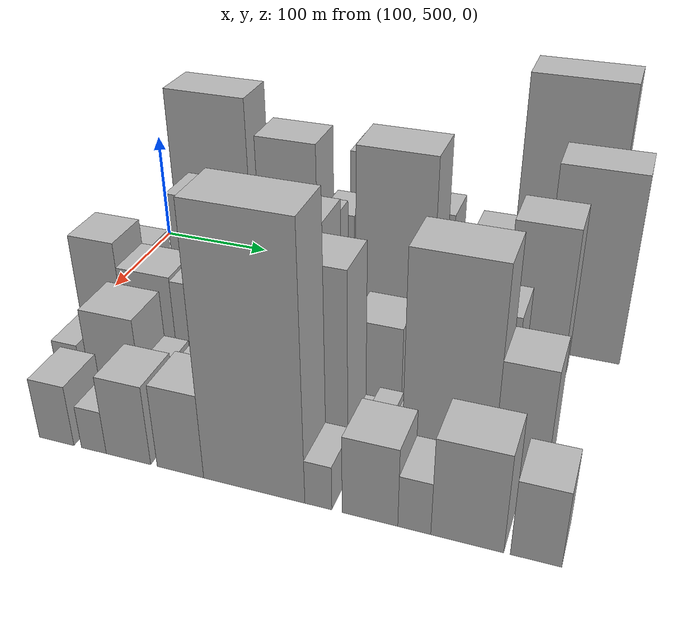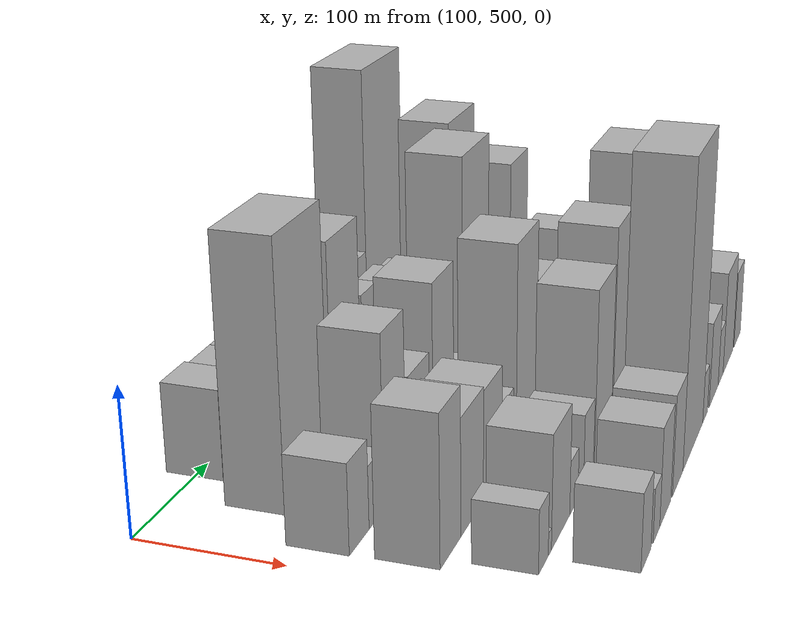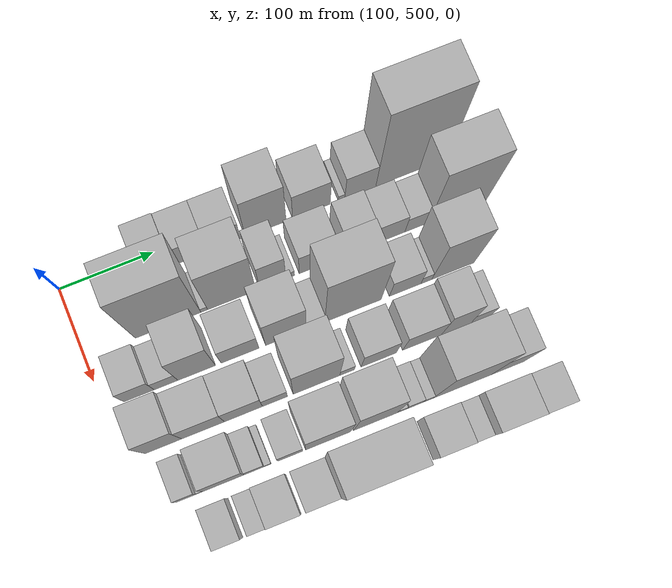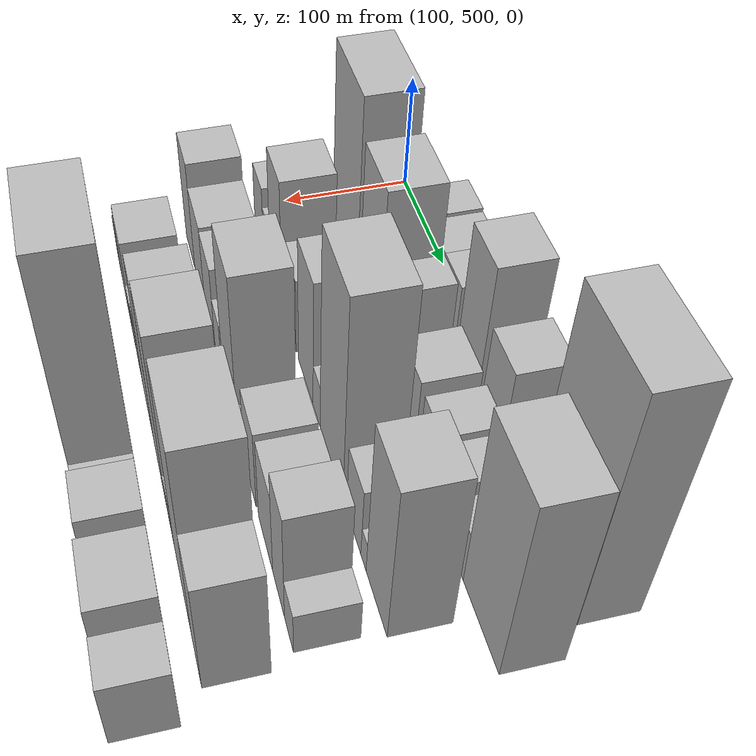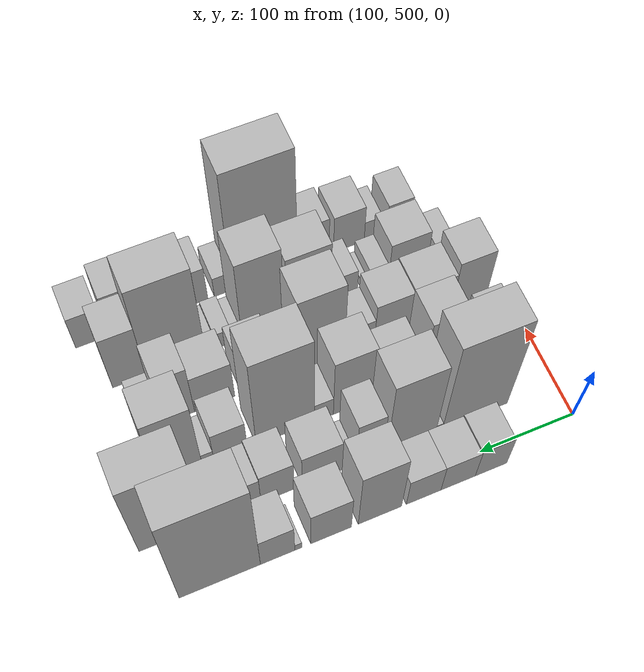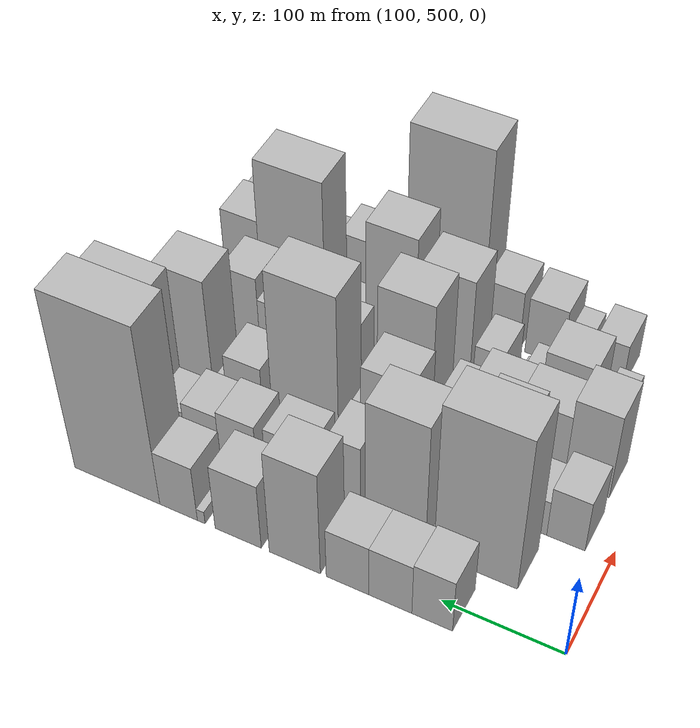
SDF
<sdf version="1.6">
 <world name="default">
  <model name="building_44">
   <static>1</static>
   <pose>100.0000 598.2994 0 0.000000 0.000000 0.000000</pose>
   <link name="link">
    <pose>0 0 31.50 0 0 0</pose>
    <collision name="collision"><geometry><box><size>40.0000 33.3076 63.0000</size></box></geometry></collision>
    <visual name="visual">
     <cast_shadows>0</cast_shadows>
     <geometry><box><size>40.0000 33.3076 63.0000</size></box></geometry>
     <material>
      <script>
       <uri>model://HANNAS_wall/materials/scripts</uri>
       <uri>model://HANNAS_wall/materials/textures</uri>
       <name>vrc/HANNAS_wall</name>
      </script>
     </material>
    </visual>
   </link>
  </model>
  <model name="building_45">
   <static>1</static>
   <pose>100.0000 632.9223 0 0.000000 0.000000 0.000000</pose>
   <link name="link">
    <pose>0 0 30.00 0 0 0</pose>
    <collision name="collision"><geometry><box><size>40.0000 35.9383 60.0000</size></box></geometry></collision>
    <visual name="visual">
     <cast_shadows>0</cast_shadows>
     <geometry><box><size>40.0000 35.9383 60.0000</size></box></geometry>
     <material>
      <script>
       <uri>model://HANNAS_wall/materials/scripts</uri>
       <uri>model://HANNAS_wall/materials/textures</uri>
       <name>vrc/HANNAS_wall</name>
      </script>
     </material>
    </visual>
   </link>
  </model>
  <model name="building_46">
   <static>1</static>
   <pose>100.0000 668.8182 0 0.000000 0.000000 0.000000</pose>
   <link name="link">
    <pose>0 0 30.00 0 0 0</pose>
    <collision name="collision"><geometry><box><size>40.0000 35.8536 60.0000</size></box></geometry></collision>
    <visual name="visual">
     <cast_shadows>0</cast_shadows>
     <geometry><box><size>40.0000 35.8536 60.0000</size></box></geometry>
     <material>
      <script>
       <uri>model://HANNAS_wall/materials/scripts</uri>
       <uri>model://HANNAS_wall/materials/textures</uri>
       <name>vrc/HANNAS_wall</name>
      </script>
     </material>
    </visual>
   </link>
  </model>
  <model name="building_47">
   <static>1</static>
   <pose>100.0000 713.8570 0 0.000000 0.000000 0.000000</pose>
   <link name="link">
    <pose>0 0 61.50 0 0 0</pose>
    <collision name="collision"><geometry><box><size>40.0000 44.2238 123.0000</size></box></geometry></collision>
    <visual name="visual">
     <cast_shadows>0</cast_shadows>
     <geometry><box><size>40.0000 44.2238 123.0000</size></box></geometry>
     <material>
      <script>
       <uri>model://HANNAS_wall/materials/scripts</uri>
       <uri>model://HANNAS_wall/materials/textures</uri>
       <name>vrc/HANNAS_wall</name>
      </script>
     </material>
    </visual>
   </link>
  </model>
  <model name="building_48">
   <static>1</static>
   <pose>100.0000 763.4033 0 0.000000 0.000000 0.000000</pose>
   <link name="link">
    <pose>0 0 39.00 0 0 0</pose>
    <collision name="collision"><geometry><box><size>40.0000 40.8688 78.0000</size></box></geometry></collision>
    <visual name="visual">
     <cast_shadows>0</cast_shadows>
     <geometry><box><size>40.0000 40.8688 78.0000</size></box></geometry>
     <material>
      <script>
       <uri>model://HANNAS_wall/materials/scripts</uri>
       <uri>model://HANNAS_wall/materials/textures</uri>
       <name>vrc/HANNAS_wall</name>
      </script>
     </material>
    </visual>
   </link>
  </model>
  <model name="building_49">
   <static>1</static>
   <pose>100.0000 796.3240 0 0.000000 0.000000 0.000000</pose>
   <link name="link">
    <pose>0 0 7.50 0 0 0</pose>
    <collision name="collision"><geometry><box><size>40.0000 6.9727 15.0000</size></box></geometry></collision>
    <visual name="visual">
     <cast_shadows>0</cast_shadows>
     <geometry><box><size>40.0000 6.9727 15.0000</size></box></geometry>
     <material>
      <script>
       <uri>model://HANNAS_wall/materials/scripts</uri>
       <uri>model://HANNAS_wall/materials/textures</uri>
       <name>vrc/HANNAS_wall</name>
      </script>
     </material>
    </visual>
   </link>
  </model>
  <model name="building_50">
   <static>1</static>
   <pose>100.0000 816.8563 0 0.000000 0.000000 0.000000</pose>
   <link name="link">
    <pose>0 0 33.00 0 0 0</pose>
    <collision name="collision"><geometry><box><size>40.0000 34.0918 66.0000</size></box></geometry></collision>
    <visual name="visual">
     <cast_shadows>0</cast_shadows>
     <geometry><box><size>40.0000 34.0918 66.0000</size></box></geometry>
     <material>
      <script>
       <uri>model://HANNAS_wall/materials/scripts</uri>
       <uri>model://HANNAS_wall/materials/textures</uri>
       <name>vrc/HANNAS_wall</name>
      </script>
     </material>
    </visual>
   </link>
  </model>
  <model name="building_51">
   <static>1</static>
   <pose>100.0000 873.5854 0 0.000000 0.000000 0.000000</pose>
   <link name="link">
    <pose>0 0 103.50 0 0 0</pose>
    <collision name="collision"><geometry><box><size>40.0000 79.3665 207.0000</size></box></geometry></collision>
    <visual name="visual">
     <cast_shadows>0</cast_shadows>
     <geometry><box><size>40.0000 79.3665 207.0000</size></box></geometry>
     <material>
      <script>
       <uri>model://HANNAS_wall/materials/scripts</uri>
       <uri>model://HANNAS_wall/materials/textures</uri>
       <name>vrc/HANNAS_wall</name>
      </script>
     </material>
    </visual>
   </link>
  </model>
  <model name="building_98">
   <static>1</static>
   <pose>155.0000 588.2048 0 0.000000 0.000000 0.000000</pose>
   <link name="link">
    <pose>0 0 90.00 0 0 0</pose>
    <collision name="collision"><geometry><box><size>40.0000 69.4981 180.0000</size></box></geometry></collision>
    <visual name="visual">
     <cast_shadows>0</cast_shadows>
     <geometry><box><size>40.0000 69.4981 180.0000</size></box></geometry>
     <material>
      <script>
       <uri>model://HANNAS_wall/materials/scripts</uri>
       <uri>model://HANNAS_wall/materials/textures</uri>
       <name>vrc/HANNAS_wall</name>
      </script>
     </material>
    </visual>
   </link>
  </model>
  <model name="building_99">
   <static>1</static>
   <pose>155.0000 626.5438 0 0.000000 0.000000 0.000000</pose>
   <link name="link">
    <pose>0 0 7.50 0 0 0</pose>
    <collision name="collision"><geometry><box><size>40.0000 7.1798 15.0000</size></box></geometry></collision>
    <visual name="visual">
     <cast_shadows>0</cast_shadows>
     <geometry><box><size>40.0000 7.1798 15.0000</size></box></geometry>
     <material>
      <script>
       <uri>model://HANNAS_wall/materials/scripts</uri>
       <uri>model://HANNAS_wall/materials/textures</uri>
       <name>vrc/HANNAS_wall</name>
      </script>
     </material>
    </visual>
   </link>
  </model>
  <model name="building_100">
   <static>1</static>
   <pose>155.0000 655.9914 0 0.000000 0.000000 0.000000</pose>
   <link name="link">
    <pose>0 0 75.00 0 0 0</pose>
    <collision name="collision"><geometry><box><size>40.0000 51.7154 150.0000</size></box></geometry></collision>
    <visual name="visual">
     <cast_shadows>0</cast_shadows>
     <geometry><box><size>40.0000 51.7154 150.0000</size></box></geometry>
     <material>
      <script>
       <uri>model://HANNAS_wall/materials/scripts</uri>
       <uri>model://HANNAS_wall/materials/textures</uri>
       <name>vrc/HANNAS_wall</name>
      </script>
     </material>
    </visual>
   </link>
  </model>
  <model name="building_101">
   <static>1</static>
   <pose>155.0000 699.9116 0 0.000000 0.000000 0.000000</pose>
   <link name="link">
    <pose>0 0 46.50 0 0 0</pose>
    <collision name="collision"><geometry><box><size>40.0000 28.1250 93.0000</size></box></geometry></collision>
    <visual name="visual">
     <cast_shadows>0</cast_shadows>
     <geometry><box><size>40.0000 28.1250 93.0000</size></box></geometry>
     <material>
      <script>
       <uri>model://HANNAS_wall/materials/scripts</uri>
       <uri>model://HANNAS_wall/materials/textures</uri>
       <name>vrc/HANNAS_wall</name>
      </script>
     </material>
    </visual>
   </link>
  </model>
  <model name="building_102">
   <static>1</static>
   <pose>155.0000 718.5795 0 0.000000 0.000000 0.000000</pose>
   <link name="link">
    <pose>0 0 10.50 0 0 0</pose>
    <collision name="collision"><geometry><box><size>40.0000 9.2106 21.0000</size></box></geometry></collision>
    <visual name="visual">
     <cast_shadows>0</cast_shadows>
     <geometry><box><size>40.0000 9.2106 21.0000</size></box></geometry>
     <material>
      <script>
       <uri>model://HANNAS_wall/materials/scripts</uri>
       <uri>model://HANNAS_wall/materials/textures</uri>
       <name>vrc/HANNAS_wall</name>
      </script>
     </material>
    </visual>
   </link>
  </model>
  <model name="building_103">
   <static>1</static>
   <pose>155.0000 748.7558 0 0.000000 0.000000 0.000000</pose>
   <link name="link">
    <pose>0 0 34.50 0 0 0</pose>
    <collision name="collision"><geometry><box><size>40.0000 41.1420 69.0000</size></box></geometry></collision>
    <visual name="visual">
     <cast_shadows>0</cast_shadows>
     <geometry><box><size>40.0000 41.1420 69.0000</size></box></geometry>
     <material>
      <script>
       <uri>model://HANNAS_wall/materials/scripts</uri>
       <uri>model://HANNAS_wall/materials/textures</uri>
       <name>vrc/HANNAS_wall</name>
      </script>
     </material>
    </visual>
   </link>
  </model>
  <model name="building_104">
   <static>1</static>
   <pose>155.0000 794.2425 0 0.000000 0.000000 0.000000</pose>
   <link name="link">
    <pose>0 0 33.00 0 0 0</pose>
    <collision name="collision"><geometry><box><size>40.0000 33.8315 66.0000</size></box></geometry></collision>
    <visual name="visual">
     <cast_shadows>0</cast_shadows>
     <geometry><box><size>40.0000 33.8315 66.0000</size></box></geometry>
     <material>
      <script>
       <uri>model://HANNAS_wall/materials/scripts</uri>
       <uri>model://HANNAS_wall/materials/textures</uri>
       <name>vrc/HANNAS_wall</name>
      </script>
     </material>
    </visual>
   </link>
  </model>
  <model name="building_105">
   <static>1</static>
   <pose>155.0000 826.9555 0 0.000000 0.000000 0.000000</pose>
   <link name="link">
    <pose>0 0 30.00 0 0 0</pose>
    <collision name="collision"><geometry><box><size>40.0000 31.5944 60.0000</size></box></geometry></collision>
    <visual name="visual">
     <cast_shadows>0</cast_shadows>
     <geometry><box><size>40.0000 31.5944 60.0000</size></box></geometry>
     <material>
      <script>
       <uri>model://HANNAS_wall/materials/scripts</uri>
       <uri>model://HANNAS_wall/materials/textures</uri>
       <name>vrc/HANNAS_wall</name>
      </script>
     </material>
    </visual>
   </link>
  </model>
  <model name="building_106">
   <static>1</static>
   <pose>155.0000 855.8504 0 0.000000 0.000000 0.000000</pose>
   <link name="link">
    <pose>0 0 24.00 0 0 0</pose>
    <collision name="collision"><geometry><box><size>40.0000 26.1955 48.0000</size></box></geometry></collision>
    <visual name="visual">
     <cast_shadows>0</cast_shadows>
     <geometry><box><size>40.0000 26.1955 48.0000</size></box></geometry>
     <material>
      <script>
       <uri>model://HANNAS_wall/materials/scripts</uri>
       <uri>model://HANNAS_wall/materials/textures</uri>
       <name>vrc/HANNAS_wall</name>
      </script>
     </material>
    </visual>
   </link>
  </model>
  <model name="building_107">
   <static>1</static>
   <pose>155.0000 900.6072 0 0.000000 0.000000 0.000000</pose>
   <link name="link">
    <pose>0 0 81.00 0 0 0</pose>
    <collision name="collision"><geometry><box><size>40.0000 63.3182 162.0000</size></box></geometry></collision>
    <visual name="visual">
     <cast_shadows>0</cast_shadows>
     <geometry><box><size>40.0000 63.3182 162.0000</size></box></geometry>
     <material>
      <script>
       <uri>model://HANNAS_wall/materials/scripts</uri>
       <uri>model://HANNAS_wall/materials/textures</uri>
       <name>vrc/HANNAS_wall</name>
      </script>
     </material>
    </visual>
   </link>
  </model>
  <model name="building_145">
   <static>1</static>
   <pose>210.0000 537.0270 0 0.000000 0.000000 0.000000</pose>
   <link name="link">
    <pose>0 0 30.00 0 0 0</pose>
    <collision name="collision"><geometry><box><size>40.0000 31.7413 60.0000</size></box></geometry></collision>
    <visual name="visual">
     <cast_shadows>0</cast_shadows>
     <geometry><box><size>40.0000 31.7413 60.0000</size></box></geometry>
     <material>
      <script>
       <uri>model://HANNAS_wall/materials/scripts</uri>
       <uri>model://HANNAS_wall/materials/textures</uri>
       <name>vrc/HANNAS_wall</name>
      </script>
     </material>
    </visual>
   </link>
  </model>
  <model name="building_146">
   <static>1</static>
   <pose>210.0000 565.3184 0 0.000000 0.000000 0.000000</pose>
   <link name="link">
    <pose>0 0 21.00 0 0 0</pose>
    <collision name="collision"><geometry><box><size>40.0000 24.8414 42.0000</size></box></geometry></collision>
    <visual name="visual">
     <cast_shadows>0</cast_shadows>
     <geometry><box><size>40.0000 24.8414 42.0000</size></box></geometry>
     <material>
      <script>
       <uri>model://HANNAS_wall/materials/scripts</uri>
       <uri>model://HANNAS_wall/materials/textures</uri>
       <name>vrc/HANNAS_wall</name>
      </script>
     </material>
    </visual>
   </link>
  </model>
  <model name="building_147">
   <static>1</static>
   <pose>210.0000 597.5307 0 0.000000 0.000000 0.000000</pose>
   <link name="link">
    <pose>0 0 58.50 0 0 0</pose>
    <collision name="collision"><geometry><box><size>40.0000 39.5834 117.0000</size></box></geometry></collision>
    <visual name="visual">
     <cast_shadows>0</cast_shadows>
     <geometry><box><size>40.0000 39.5834 117.0000</size></box></geometry>
     <material>
      <script>
       <uri>model://HANNAS_wall/materials/scripts</uri>
       <uri>model://HANNAS_wall/materials/textures</uri>
       <name>vrc/HANNAS_wall</name>
      </script>
     </material>
    </visual>
   </link>
  </model>
  <model name="building_148">
   <static>1</static>
   <pose>210.0000 643.3754 0 0.000000 0.000000 0.000000</pose>
   <link name="link">
    <pose>0 0 34.50 0 0 0</pose>
    <collision name="collision"><geometry><box><size>40.0000 40.1060 69.0000</size></box></geometry></collision>
    <visual name="visual">
     <cast_shadows>0</cast_shadows>
     <geometry><box><size>40.0000 40.1060 69.0000</size></box></geometry>
     <material>
      <script>
       <uri>model://HANNAS_wall/materials/scripts</uri>
       <uri>model://HANNAS_wall/materials/textures</uri>
       <name>vrc/HANNAS_wall</name>
      </script>
     </material>
    </visual>
   </link>
  </model>
  <model name="building_149">
   <static>1</static>
   <pose>210.0000 692.0297 0 0.000000 0.000000 0.000000</pose>
   <link name="link">
    <pose>0 0 57.00 0 0 0</pose>
    <collision name="collision"><geometry><box><size>40.0000 43.2027 114.0000</size></box></geometry></collision>
    <visual name="visual">
     <cast_shadows>0</cast_shadows>
     <geometry><box><size>40.0000 43.2027 114.0000</size></box></geometry>
     <material>
      <script>
       <uri>model://HANNAS_wall/materials/scripts</uri>
       <uri>model://HANNAS_wall/materials/textures</uri>
       <name>vrc/HANNAS_wall</name>
      </script>
     </material>
    </visual>
   </link>
  </model>
  <model name="building_150">
   <static>1</static>
   <pose>210.0000 723.5658 0 0.000000 0.000000 0.000000</pose>
   <link name="link">
    <pose>0 0 19.50 0 0 0</pose>
    <collision name="collision"><geometry><box><size>40.0000 19.8695 39.0000</size></box></geometry></collision>
    <visual name="visual">
     <cast_shadows>0</cast_shadows>
     <geometry><box><size>40.0000 19.8695 39.0000</size></box></geometry>
     <material>
      <script>
       <uri>model://HANNAS_wall/materials/scripts</uri>
       <uri>model://HANNAS_wall/materials/textures</uri>
       <name>vrc/HANNAS_wall</name>
      </script>
     </material>
    </visual>
   </link>
  </model>
  <model name="building_151">
   <static>1</static>
   <pose>210.0000 763.7306 0 0.000000 0.000000 0.000000</pose>
   <link name="link">
    <pose>0 0 90.00 0 0 0</pose>
    <collision name="collision"><geometry><box><size>40.0000 60.4600 180.0000</size></box></geometry></collision>
    <visual name="visual">
     <cast_shadows>0</cast_shadows>
     <geometry><box><size>40.0000 60.4600 180.0000</size></box></geometry>
     <material>
      <script>
       <uri>model://HANNAS_wall/materials/scripts</uri>
       <uri>model://HANNAS_wall/materials/textures</uri>
       <name>vrc/HANNAS_wall</name>
      </script>
     </material>
    </visual>
   </link>
  </model>
  <model name="building_152">
   <static>1</static>
   <pose>210.0000 819.9204 0 0.000000 0.000000 0.000000</pose>
   <link name="link">
    <pose>0 0 31.50 0 0 0</pose>
    <collision name="collision"><geometry><box><size>40.0000 33.9198 63.0000</size></box></geometry></collision>
    <visual name="visual">
     <cast_shadows>0</cast_shadows>
     <geometry><box><size>40.0000 33.9198 63.0000</size></box></geometry>
     <material>
      <script>
       <uri>model://HANNAS_wall/materials/scripts</uri>
       <uri>model://HANNAS_wall/materials/textures</uri>
       <name>vrc/HANNAS_wall</name>
      </script>
     </material>
    </visual>
   </link>
  </model>
  <model name="building_153">
   <static>1</static>
   <pose>210.0000 842.8672 0 0.000000 0.000000 0.000000</pose>
   <link name="link">
    <pose>0 0 13.50 0 0 0</pose>
    <collision name="collision"><geometry><box><size>40.0000 11.9738 27.0000</size></box></geometry></collision>
    <visual name="visual">
     <cast_shadows>0</cast_shadows>
     <geometry><box><size>40.0000 11.9738 27.0000</size></box></geometry>
     <material>
      <script>
       <uri>model://HANNAS_wall/materials/scripts</uri>
       <uri>model://HANNAS_wall/materials/textures</uri>
       <name>vrc/HANNAS_wall</name>
      </script>
     </material>
    </visual>
   </link>
  </model>
  <model name="building_154">
   <static>1</static>
   <pose>210.0000 871.7853 0 0.000000 0.000000 0.000000</pose>
   <link name="link">
    <pose>0 0 70.50 0 0 0</pose>
    <collision name="collision"><geometry><box><size>40.0000 45.8624 141.0000</size></box></geometry></collision>
    <visual name="visual">
     <cast_shadows>0</cast_shadows>
     <geometry><box><size>40.0000 45.8624 141.0000</size></box></geometry>
     <material>
      <script>
       <uri>model://HANNAS_wall/materials/scripts</uri>
       <uri>model://HANNAS_wall/materials/textures</uri>
       <name>vrc/HANNAS_wall</name>
      </script>
     </material>
    </visual>
   </link>
  </model>
  <model name="building_195">
   <static>1</static>
   <pose>265.0000 541.9169 0 0.000000 0.000000 0.000000</pose>
   <link name="link">
    <pose>0 0 49.50 0 0 0</pose>
    <collision name="collision"><geometry><box><size>40.0000 38.2446 99.0000</size></box></geometry></collision>
    <visual name="visual">
     <cast_shadows>0</cast_shadows>
     <geometry><box><size>40.0000 38.2446 99.0000</size></box></geometry>
     <material>
      <script>
       <uri>model://HANNAS_wall/materials/scripts</uri>
       <uri>model://HANNAS_wall/materials/textures</uri>
       <name>vrc/HANNAS_wall</name>
      </script>
     </material>
    </visual>
   </link>
  </model>
  <model name="building_196">
   <static>1</static>
   <pose>265.0000 583.3566 0 0.000000 0.000000 0.000000</pose>
   <link name="link">
    <pose>0 0 39.00 0 0 0</pose>
    <collision name="collision"><geometry><box><size>40.0000 44.6348 78.0000</size></box></geometry></collision>
    <visual name="visual">
     <cast_shadows>0</cast_shadows>
     <geometry><box><size>40.0000 44.6348 78.0000</size></box></geometry>
     <material>
      <script>
       <uri>model://HANNAS_wall/materials/scripts</uri>
       <uri>model://HANNAS_wall/materials/textures</uri>
       <name>vrc/HANNAS_wall</name>
      </script>
     </material>
    </visual>
   </link>
  </model>
  <model name="building_197">
   <static>1</static>
   <pose>265.0000 625.5995 0 0.000000 0.000000 0.000000</pose>
   <link name="link">
    <pose>0 0 37.50 0 0 0</pose>
    <collision name="collision"><geometry><box><size>40.0000 39.8512 75.0000</size></box></geometry></collision>
    <visual name="visual">
     <cast_shadows>0</cast_shadows>
     <geometry><box><size>40.0000 39.8512 75.0000</size></box></geometry>
     <material>
      <script>
       <uri>model://HANNAS_wall/materials/scripts</uri>
       <uri>model://HANNAS_wall/materials/textures</uri>
       <name>vrc/HANNAS_wall</name>
      </script>
     </material>
    </visual>
   </link>
  </model>
  <model name="building_198">
   <static>1</static>
   <pose>265.0000 658.6505 0 0.000000 0.000000 0.000000</pose>
   <link name="link">
    <pose>0 0 24.00 0 0 0</pose>
    <collision name="collision"><geometry><box><size>40.0000 26.2507 48.0000</size></box></geometry></collision>
    <visual name="visual">
     <cast_shadows>0</cast_shadows>
     <geometry><box><size>40.0000 26.2507 48.0000</size></box></geometry>
     <material>
      <script>
       <uri>model://HANNAS_wall/materials/scripts</uri>
       <uri>model://HANNAS_wall/materials/textures</uri>
       <name>vrc/HANNAS_wall</name>
      </script>
     </material>
    </visual>
   </link>
  </model>
  <model name="building_199">
   <static>1</static>
   <pose>265.0000 702.4014 0 0.000000 0.000000 0.000000</pose>
   <link name="link">
    <pose>0 0 72.00 0 0 0</pose>
    <collision name="collision"><geometry><box><size>40.0000 49.2511 144.0000</size></box></geometry></collision>
    <visual name="visual">
     <cast_shadows>0</cast_shadows>
     <geometry><box><size>40.0000 49.2511 144.0000</size></box></geometry>
     <material>
      <script>
       <uri>model://HANNAS_wall/materials/scripts</uri>
       <uri>model://HANNAS_wall/materials/textures</uri>
       <name>vrc/HANNAS_wall</name>
      </script>
     </material>
    </visual>
   </link>
  </model>
  <model name="building_200">
   <static>1</static>
   <pose>265.0000 734.8977 0 0.000000 0.000000 0.000000</pose>
   <link name="link">
    <pose>0 0 15.00 0 0 0</pose>
    <collision name="collision"><geometry><box><size>40.0000 15.7416 30.0000</size></box></geometry></collision>
    <visual name="visual">
     <cast_shadows>0</cast_shadows>
     <geometry><box><size>40.0000 15.7416 30.0000</size></box></geometry>
     <material>
      <script>
       <uri>model://HANNAS_wall/materials/scripts</uri>
       <uri>model://HANNAS_wall/materials/textures</uri>
       <name>vrc/HANNAS_wall</name>
      </script>
     </material>
    </visual>
   </link>
  </model>
  <model name="building_201">
   <static>1</static>
   <pose>265.0000 768.5330 0 0.000000 0.000000 0.000000</pose>
   <link name="link">
    <pose>0 0 36.00 0 0 0</pose>
    <collision name="collision"><geometry><box><size>40.0000 37.5289 72.0000</size></box></geometry></collision>
    <visual name="visual">
     <cast_shadows>0</cast_shadows>
     <geometry><box><size>40.0000 37.5289 72.0000</size></box></geometry>
     <material>
      <script>
       <uri>model://HANNAS_wall/materials/scripts</uri>
       <uri>model://HANNAS_wall/materials/textures</uri>
       <name>vrc/HANNAS_wall</name>
      </script>
     </material>
    </visual>
   </link>
  </model>
  <model name="building_202">
   <static>1</static>
   <pose>265.0000 815.1306 0 0.000000 0.000000 0.000000</pose>
   <link name="link">
    <pose>0 0 37.50 0 0 0</pose>
    <collision name="collision"><geometry><box><size>40.0000 41.6664 75.0000</size></box></geometry></collision>
    <visual name="visual">
     <cast_shadows>0</cast_shadows>
     <geometry><box><size>40.0000 41.6664 75.0000</size></box></geometry>
     <material>
      <script>
       <uri>model://HANNAS_wall/materials/scripts</uri>
       <uri>model://HANNAS_wall/materials/textures</uri>
       <name>vrc/HANNAS_wall</name>
      </script>
     </material>
    </visual>
   </link>
  </model>
  <model name="building_203">
   <static>1</static>
   <pose>265.0000 852.0621 0 0.000000 0.000000 0.000000</pose>
   <link name="link">
    <pose>0 0 49.50 0 0 0</pose>
    <collision name="collision"><geometry><box><size>40.0000 32.1965 99.0000</size></box></geometry></collision>
    <visual name="visual">
     <cast_shadows>0</cast_shadows>
     <geometry><box><size>40.0000 32.1965 99.0000</size></box></geometry>
     <material>
      <script>
       <uri>model://HANNAS_wall/materials/scripts</uri>
       <uri>model://HANNAS_wall/materials/textures</uri>
       <name>vrc/HANNAS_wall</name>
      </script>
     </material>
    </visual>
   </link>
  </model>
  <model name="building_204">
   <static>1</static>
   <pose>265.0000 879.8087 0 0.000000 0.000000 0.000000</pose>
   <link name="link">
    <pose>0 0 19.50 0 0 0</pose>
    <collision name="collision"><geometry><box><size>40.0000 23.2968 39.0000</size></box></geometry></collision>
    <visual name="visual">
     <cast_shadows>0</cast_shadows>
     <geometry><box><size>40.0000 23.2968 39.0000</size></box></geometry>
     <material>
      <script>
       <uri>model://HANNAS_wall/materials/scripts</uri>
       <uri>model://HANNAS_wall/materials/textures</uri>
       <name>vrc/HANNAS_wall</name>
      </script>
     </material>
    </visual>
   </link>
  </model>
  <model name="building_244">
   <static>1</static>
   <pose>320.0000 545.0907 0 0.000000 0.000000 0.000000</pose>
   <link name="link">
    <pose>0 0 21.00 0 0 0</pose>
    <collision name="collision"><geometry><box><size>40.0000 21.0416 42.0000</size></box></geometry></collision>
    <visual name="visual">
     <cast_shadows>0</cast_shadows>
     <geometry><box><size>40.0000 21.0416 42.0000</size></box></geometry>
     <material>
      <script>
       <uri>model://HANNAS_wall/materials/scripts</uri>
       <uri>model://HANNAS_wall/materials/textures</uri>
       <name>vrc/HANNAS_wall</name>
      </script>
     </material>
    </visual>
   </link>
  </model>
  <model name="building_245">
   <static>1</static>
   <pose>320.0000 559.1360 0 0.000000 0.000000 0.000000</pose>
   <link name="link">
    <pose>0 0 7.50 0 0 0</pose>
    <collision name="collision"><geometry><box><size>40.0000 7.0491 15.0000</size></box></geometry></collision>
    <visual name="visual">
     <cast_shadows>0</cast_shadows>
     <geometry><box><size>40.0000 7.0491 15.0000</size></box></geometry>
     <material>
      <script>
       <uri>model://HANNAS_wall/materials/scripts</uri>
       <uri>model://HANNAS_wall/materials/textures</uri>
       <name>vrc/HANNAS_wall</name>
      </script>
     </material>
    </visual>
   </link>
  </model>
  <model name="building_246">
   <static>1</static>
   <pose>320.0000 584.0660 0 0.000000 0.000000 0.000000</pose>
   <link name="link">
    <pose>0 0 37.50 0 0 0</pose>
    <collision name="collision"><geometry><box><size>40.0000 42.8109 75.0000</size></box></geometry></collision>
    <visual name="visual">
     <cast_shadows>0</cast_shadows>
     <geometry><box><size>40.0000 42.8109 75.0000</size></box></geometry>
     <material>
      <script>
       <uri>model://HANNAS_wall/materials/scripts</uri>
       <uri>model://HANNAS_wall/materials/textures</uri>
       <name>vrc/HANNAS_wall</name>
      </script>
     </material>
    </visual>
   </link>
  </model>
  <model name="building_247">
   <static>1</static>
   <pose>320.0000 615.6109 0 0.000000 0.000000 0.000000</pose>
   <link name="link">
    <pose>0 0 18.00 0 0 0</pose>
    <collision name="collision"><geometry><box><size>40.0000 20.2789 36.0000</size></box></geometry></collision>
    <visual name="visual">
     <cast_shadows>0</cast_shadows>
     <geometry><box><size>40.0000 20.2789 36.0000</size></box></geometry>
     <material>
      <script>
       <uri>model://HANNAS_wall/materials/scripts</uri>
       <uri>model://HANNAS_wall/materials/textures</uri>
       <name>vrc/HANNAS_wall</name>
      </script>
     </material>
    </visual>
   </link>
  </model>
  <model name="building_248">
   <static>1</static>
   <pose>320.0000 629.3233 0 0.000000 0.000000 0.000000</pose>
   <link name="link">
    <pose>0 0 7.50 0 0 0</pose>
    <collision name="collision"><geometry><box><size>40.0000 7.1458 15.0000</size></box></geometry></collision>
    <visual name="visual">
     <cast_shadows>0</cast_shadows>
     <geometry><box><size>40.0000 7.1458 15.0000</size></box></geometry>
     <material>
      <script>
       <uri>model://HANNAS_wall/materials/scripts</uri>
       <uri>model://HANNAS_wall/materials/textures</uri>
       <name>vrc/HANNAS_wall</name>
      </script>
     </material>
    </visual>
   </link>
  </model>
  <model name="building_249">
   <static>1</static>
   <pose>320.0000 652.8866 0 0.000000 0.000000 0.000000</pose>
   <link name="link">
    <pose>0 0 25.50 0 0 0</pose>
    <collision name="collision"><geometry><box><size>40.0000 25.9809 51.0000</size></box></geometry></collision>
    <visual name="visual">
     <cast_shadows>0</cast_shadows>
     <geometry><box><size>40.0000 25.9809 51.0000</size></box></geometry>
     <material>
      <script>
       <uri>model://HANNAS_wall/materials/scripts</uri>
       <uri>model://HANNAS_wall/materials/textures</uri>
       <name>vrc/HANNAS_wall</name>
      </script>
     </material>
    </visual>
   </link>
  </model>
  <model name="building_250">
   <static>1</static>
   <pose>320.0000 692.5219 0 0.000000 0.000000 0.000000</pose>
   <link name="link">
    <pose>0 0 61.50 0 0 0</pose>
    <collision name="collision"><geometry><box><size>40.0000 47.2896 123.0000</size></box></geometry></collision>
    <visual name="visual">
     <cast_shadows>0</cast_shadows>
     <geometry><box><size>40.0000 47.2896 123.0000</size></box></geometry>
     <material>
      <script>
       <uri>model://HANNAS_wall/materials/scripts</uri>
       <uri>model://HANNAS_wall/materials/textures</uri>
       <name>vrc/HANNAS_wall</name>
      </script>
     </material>
    </visual>
   </link>
  </model>
  <model name="building_251">
   <static>1</static>
   <pose>320.0000 742.1125 0 0.000000 0.000000 0.000000</pose>
   <link name="link">
    <pose>0 0 73.50 0 0 0</pose>
    <collision name="collision"><geometry><box><size>40.0000 45.8917 147.0000</size></box></geometry></collision>
    <visual name="visual">
     <cast_shadows>0</cast_shadows>
     <geometry><box><size>40.0000 45.8917 147.0000</size></box></geometry>
     <material>
      <script>
       <uri>model://HANNAS_wall/materials/scripts</uri>
       <uri>model://HANNAS_wall/materials/textures</uri>
       <name>vrc/HANNAS_wall</name>
      </script>
     </material>
    </visual>
   </link>
  </model>
  <model name="building_252">
   <static>1</static>
   <pose>320.0000 770.2462 0 0.000000 0.000000 0.000000</pose>
   <link name="link">
    <pose>0 0 10.50 0 0 0</pose>
    <collision name="collision"><geometry><box><size>40.0000 10.3757 21.0000</size></box></geometry></collision>
    <visual name="visual">
     <cast_shadows>0</cast_shadows>
     <geometry><box><size>40.0000 10.3757 21.0000</size></box></geometry>
     <material>
      <script>
       <uri>model://HANNAS_wall/materials/scripts</uri>
       <uri>model://HANNAS_wall/materials/textures</uri>
       <name>vrc/HANNAS_wall</name>
      </script>
     </material>
    </visual>
   </link>
  </model>
  <model name="building_253">
   <static>1</static>
   <pose>320.0000 784.2180 0 0.000000 0.000000 0.000000</pose>
   <link name="link">
    <pose>0 0 15.00 0 0 0</pose>
    <collision name="collision"><geometry><box><size>40.0000 17.5679 30.0000</size></box></geometry></collision>
    <visual name="visual">
     <cast_shadows>0</cast_shadows>
     <geometry><box><size>40.0000 17.5679 30.0000</size></box></geometry>
     <material>
      <script>
       <uri>model://HANNAS_wall/materials/scripts</uri>
       <uri>model://HANNAS_wall/materials/textures</uri>
       <name>vrc/HANNAS_wall</name>
      </script>
     </material>
    </visual>
   </link>
  </model>
  <model name="building_254">
   <static>1</static>
   <pose>320.0000 798.3259 0 0.000000 0.000000 0.000000</pose>
   <link name="link">
    <pose>0 0 12.00 0 0 0</pose>
    <collision name="collision"><geometry><box><size>40.0000 10.6478 24.0000</size></box></geometry></collision>
    <visual name="visual">
     <cast_shadows>0</cast_shadows>
     <geometry><box><size>40.0000 10.6478 24.0000</size></box></geometry>
     <material>
      <script>
       <uri>model://HANNAS_wall/materials/scripts</uri>
       <uri>model://HANNAS_wall/materials/textures</uri>
       <name>vrc/HANNAS_wall</name>
      </script>
     </material>
    </visual>
   </link>
  </model>
  <model name="building_255">
   <static>1</static>
   <pose>320.0000 834.7496 0 0.000000 0.000000 0.000000</pose>
   <link name="link">
    <pose>0 0 85.50 0 0 0</pose>
    <collision name="collision"><geometry><box><size>40.0000 62.1997 171.0000</size></box></geometry></collision>
    <visual name="visual">
     <cast_shadows>0</cast_shadows>
     <geometry><box><size>40.0000 62.1997 171.0000</size></box></geometry>
     <material>
      <script>
       <uri>model://HANNAS_wall/materials/scripts</uri>
       <uri>model://HANNAS_wall/materials/textures</uri>
       <name>vrc/HANNAS_wall</name>
      </script>
     </material>
    </visual>
   </link>
  </model>
  <model name="building_256">
   <static>1</static>
   <pose>320.0000 883.3213 0 0.000000 0.000000 0.000000</pose>
   <link name="link">
    <pose>0 0 51.00 0 0 0</pose>
    <collision name="collision"><geometry><box><size>40.0000 34.9436 102.0000</size></box></geometry></collision>
    <visual name="visual">
     <cast_shadows>0</cast_shadows>
     <geometry><box><size>40.0000 34.9436 102.0000</size></box></geometry>
     <material>
      <script>
       <uri>model://HANNAS_wall/materials/scripts</uri>
       <uri>model://HANNAS_wall/materials/textures</uri>
       <name>vrc/HANNAS_wall</name>
      </script>
     </material>
    </visual>
   </link>
  </model>
  <model name="building_296">
   <static>1</static>
   <pose>375.0000 567.9505 0 0.000000 0.000000 0.000000</pose>
   <link name="link">
    <pose>0 0 25.50 0 0 0</pose>
    <collision name="collision"><geometry><box><size>40.0000 27.9979 51.0000</size></box></geometry></collision>
    <visual name="visual">
     <cast_shadows>0</cast_shadows>
     <geometry><box><size>40.0000 27.9979 51.0000</size></box></geometry>
     <material>
      <script>
       <uri>model://HANNAS_wall/materials/scripts</uri>
       <uri>model://HANNAS_wall/materials/textures</uri>
       <name>vrc/HANNAS_wall</name>
      </script>
     </material>
    </visual>
   </link>
  </model>
  <model name="building_297">
   <static>1</static>
   <pose>375.0000 597.8137 0 0.000000 0.000000 0.000000</pose>
   <link name="link">
    <pose>0 0 18.00 0 0 0</pose>
    <collision name="collision"><geometry><box><size>40.0000 19.7287 36.0000</size></box></geometry></collision>
    <visual name="visual">
     <cast_shadows>0</cast_shadows>
     <geometry><box><size>40.0000 19.7287 36.0000</size></box></geometry>
     <material>
      <script>
       <uri>model://HANNAS_wall/materials/scripts</uri>
       <uri>model://HANNAS_wall/materials/textures</uri>
       <name>vrc/HANNAS_wall</name>
      </script>
     </material>
    </visual>
   </link>
  </model>
  <model name="building_298">
   <static>1</static>
   <pose>375.0000 624.9088 0 0.000000 0.000000 0.000000</pose>
   <link name="link">
    <pose>0 0 33.00 0 0 0</pose>
    <collision name="collision"><geometry><box><size>40.0000 34.4614 66.0000</size></box></geometry></collision>
    <visual name="visual">
     <cast_shadows>0</cast_shadows>
     <geometry><box><size>40.0000 34.4614 66.0000</size></box></geometry>
     <material>
      <script>
       <uri>model://HANNAS_wall/materials/scripts</uri>
       <uri>model://HANNAS_wall/materials/textures</uri>
       <name>vrc/HANNAS_wall</name>
      </script>
     </material>
    </visual>
   </link>
  </model>
  <model name="building_299">
   <static>1</static>
   <pose>375.0000 664.5869 0 0.000000 0.000000 0.000000</pose>
   <link name="link">
    <pose>0 0 34.50 0 0 0</pose>
    <collision name="collision"><geometry><box><size>40.0000 34.8948 69.0000</size></box></geometry></collision>
    <visual name="visual">
     <cast_shadows>0</cast_shadows>
     <geometry><box><size>40.0000 34.8948 69.0000</size></box></geometry>
     <material>
      <script>
       <uri>model://HANNAS_wall/materials/scripts</uri>
       <uri>model://HANNAS_wall/materials/textures</uri>
       <name>vrc/HANNAS_wall</name>
      </script>
     </material>
    </visual>
   </link>
  </model>
  <model name="building_300">
   <static>1</static>
   <pose>375.0000 718.3546 0 0.000000 0.000000 0.000000</pose>
   <link name="link">
    <pose>0 0 105.00 0 0 0</pose>
    <collision name="collision"><geometry><box><size>40.0000 72.6407 210.0000</size></box></geometry></collision>
    <visual name="visual">
     <cast_shadows>0</cast_shadows>
     <geometry><box><size>40.0000 72.6407 210.0000</size></box></geometry>
     <material>
      <script>
       <uri>model://HANNAS_wall/materials/scripts</uri>
       <uri>model://HANNAS_wall/materials/textures</uri>
       <name>vrc/HANNAS_wall</name>
      </script>
     </material>
    </visual>
   </link>
  </model>
  <model name="building_301">
   <static>1</static>
   <pose>375.0000 763.9782 0 0.000000 0.000000 0.000000</pose>
   <link name="link">
    <pose>0 0 18.00 0 0 0</pose>
    <collision name="collision"><geometry><box><size>40.0000 18.6065 36.0000</size></box></geometry></collision>
    <visual name="visual">
     <cast_shadows>0</cast_shadows>
     <geometry><box><size>40.0000 18.6065 36.0000</size></box></geometry>
     <material>
      <script>
       <uri>model://HANNAS_wall/materials/scripts</uri>
       <uri>model://HANNAS_wall/materials/textures</uri>
       <name>vrc/HANNAS_wall</name>
      </script>
     </material>
    </visual>
   </link>
  </model>
  <model name="building_302">
   <static>1</static>
   <pose>375.0000 798.8976 0 0.000000 0.000000 0.000000</pose>
   <link name="link">
    <pose>0 0 31.50 0 0 0</pose>
    <collision name="collision"><geometry><box><size>40.0000 37.2323 63.0000</size></box></geometry></collision>
    <visual name="visual">
     <cast_shadows>0</cast_shadows>
     <geometry><box><size>40.0000 37.2323 63.0000</size></box></geometry>
     <material>
      <script>
       <uri>model://HANNAS_wall/materials/scripts</uri>
       <uri>model://HANNAS_wall/materials/textures</uri>
       <name>vrc/HANNAS_wall</name>
      </script>
     </material>
    </visual>
   </link>
  </model>
  <model name="building_303">
   <static>1</static>
   <pose>375.0000 828.2614 0 0.000000 0.000000 0.000000</pose>
   <link name="link">
    <pose>0 0 21.00 0 0 0</pose>
    <collision name="collision"><geometry><box><size>40.0000 21.4951 42.0000</size></box></geometry></collision>
    <visual name="visual">
     <cast_shadows>0</cast_shadows>
     <geometry><box><size>40.0000 21.4951 42.0000</size></box></geometry>
     <material>
      <script>
       <uri>model://HANNAS_wall/materials/scripts</uri>
       <uri>model://HANNAS_wall/materials/textures</uri>
       <name>vrc/HANNAS_wall</name>
      </script>
     </material>
    </visual>
   </link>
  </model>
  <model name="building_304">
   <static>1</static>
   <pose>375.0000 862.0959 0 0.000000 0.000000 0.000000</pose>
   <link name="link">
    <pose>0 0 39.00 0 0 0</pose>
    <collision name="collision"><geometry><box><size>40.0000 46.1740 78.0000</size></box></geometry></collision>
    <visual name="visual">
     <cast_shadows>0</cast_shadows>
     <geometry><box><size>40.0000 46.1740 78.0000</size></box></geometry>
     <material>
      <script>
       <uri>model://HANNAS_wall/materials/scripts</uri>
       <uri>model://HANNAS_wall/materials/textures</uri>
       <name>vrc/HANNAS_wall</name>
      </script>
     </material>
    </visual>
   </link>
  </model>
  <model name="building_305">
   <static>1</static>
   <pose>375.0000 904.8622 0 0.000000 0.000000 0.000000</pose>
   <link name="link">
    <pose>0 0 30.00 0 0 0</pose>
    <collision name="collision"><geometry><box><size>40.0000 31.3587 60.0000</size></box></geometry></collision>
    <visual name="visual">
     <cast_shadows>0</cast_shadows>
     <geometry><box><size>40.0000 31.3587 60.0000</size></box></geometry>
     <material>
      <script>
       <uri>model://HANNAS_wall/materials/scripts</uri>
       <uri>model://HANNAS_wall/materials/textures</uri>
       <name>vrc/HANNAS_wall</name>
      </script>
     </material>
    </visual>
   </link>
  </model>
 </world>
</sdf>
